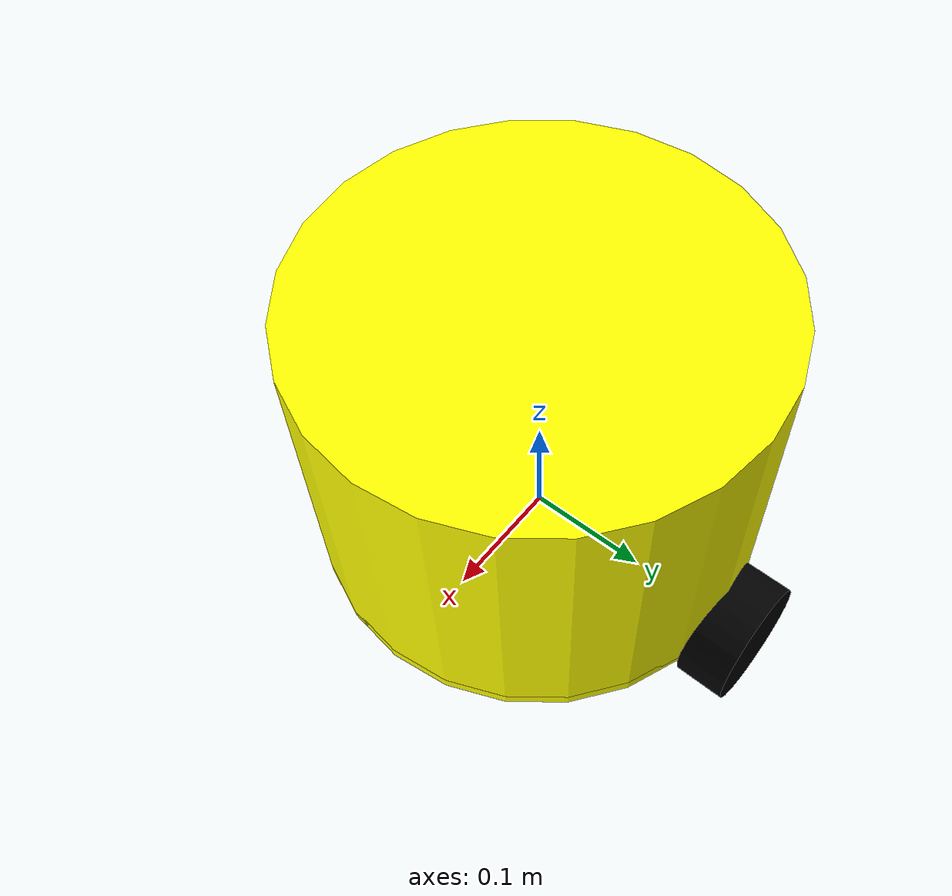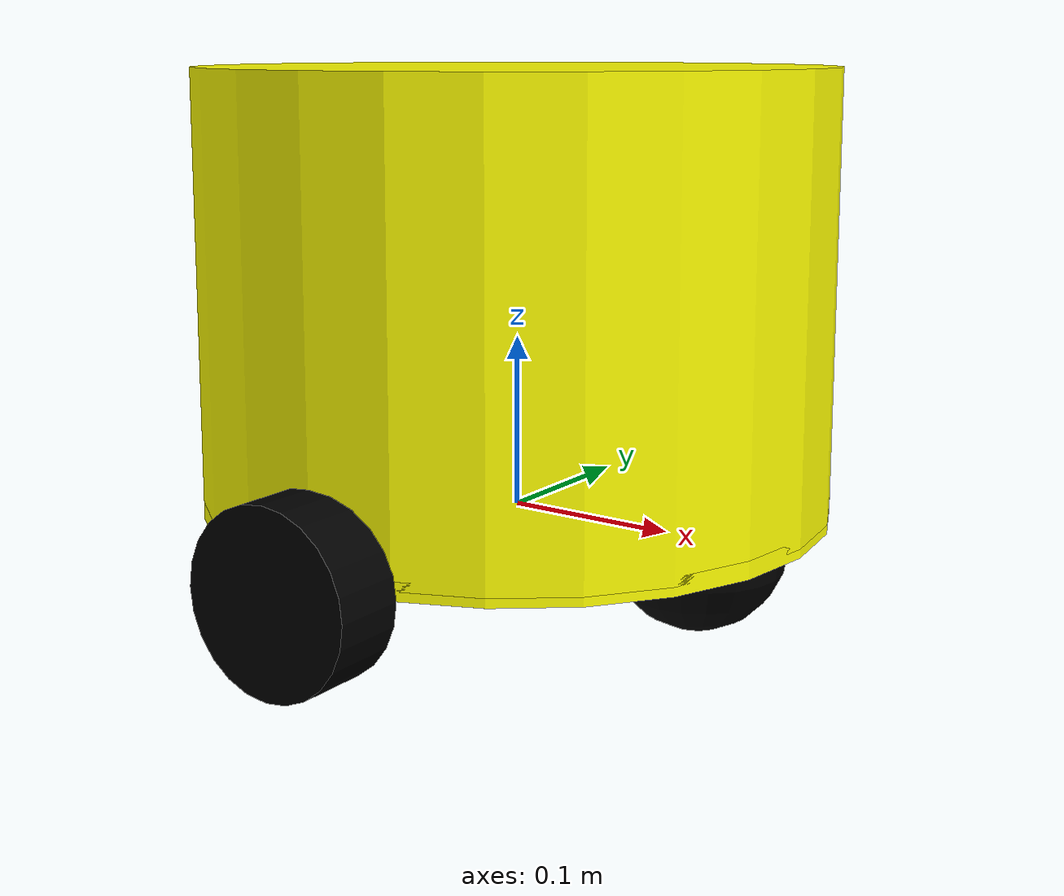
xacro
<?xml version="1.0"?>
<robot name="robot_core" xmlns:xacro="http://www.ros.org/wiki/xacro">

  <!-- Define color -->
  <material name="yellow">
    <color rgba="1 1 0 1"/>
  </material>
  <material name="black">
    <color rgba="0 0 0 1"/>
  </material>

  <!-- Define the base link -->
  <link name="base_link">
    <visual>
      <geometry>
        <cylinder radius="0.1815" length="0.01"/> <!-- Base plate dimensions -->
      </geometry>
      <material name="yellow"/>
      <origin xyz="0 0 0.005" rpy="0 0 0"/>
    </visual>
    <collision>
      <geometry>
        <cylinder radius="0.1815" length="0.01"/> <!-- Base plate dimensions -->
      </geometry>
      <origin xyz="0 0 0.005" rpy="0 0 0"/>
    </collision>
    <inertial>
      <mass value="1"/> <!-- Adjust mass as needed -->
      <origin xyz="0 0 0.005"/>
      <inertia ixx="0.01" ixy="0.0" ixz="0.0"
               iyy="0.01" iyz="0.0"
               izz="0.01"/> <!-- Approximate inertia values -->
    </inertial>
  </link>

  <!-- Define the chassis link -->
  <link name="chassis_link">
    <visual>
      <geometry>
        <cylinder radius="0.1815" length="0.25"/> <!-- 363mm diameter, 250mm height -->
      </geometry>
      <material name="yellow"/>
      <origin xyz="0 0 0.125" rpy="0 0 0"/> <!-- Centered on the base -->
    </visual>
    <collision>
      <geometry>
        <cylinder radius="0.1815" length="0.25"/>
      </geometry>
      <origin xyz="0 0 0.125" rpy="0 0 0"/>
    </collision>
    <inertial>
      <mass value="5"/> <!-- Adjust mass as needed -->
      <origin xyz="0 0 0.125"/>
      <inertia ixx="0.1" ixy="0.0" ixz="0.0"
               iyy="0.1" iyz="0.0"
               izz="0.1"/> <!-- Approximate inertia values -->
    </inertial>
  </link>

  <!-- Joint between base_link and chassis_link -->
  <joint name="base_to_chassis" type="fixed">
    <parent link="base_link"/>
    <child link="chassis_link"/>
    <origin xyz="0 0 0.005" rpy="0 0 0"/> <!-- Adjust based on actual height -->
  </joint>

  <!-- Left wheel -->
  <joint name="left_wheel_joint" type="continuous">
    <parent link="base_link"/>
    <child link="left_wheel"/>
    <origin xyz="0 0.195 0" rpy="-1.5708 0 0"/> <!-- Adjusted to numerical value -->
    <axis xyz="0 0 1"/>
  </joint>

  <link name="left_wheel">
    <visual>
      <geometry>
        <cylinder radius="0.05" length="0.04"/>
      </geometry>
      <material name="black"/>
    </visual>
    <collision>
      <geometry>
        <cylinder radius="0.05" length="0.04"/>
      </geometry>
    </collision>
    <inertial>
      <mass value="0.1"/> <!-- Adjust mass as needed -->
      <origin xyz="0 0 0"/>
      <inertia ixx="0.0001" ixy="0.0" ixz="0.0"
               iyy="0.0001" iyz="0.0"
               izz="0.0001"/> <!-- Approximate inertia values -->
    </inertial>
  </link>

  <!-- Right wheel -->
  <joint name="right_wheel_joint" type="continuous">
    <parent link="base_link"/>
    <child link="right_wheel"/>
    <origin xyz="0 -0.195 0" rpy="1.5708 0 0"/> <!-- Adjusted to numerical value -->
    <axis xyz="0 0 -1"/>
  </joint>

  <link name="right_wheel">
    <visual>
      <geometry>
        <cylinder radius="0.05" length="0.04"/>
      </geometry>
      <material name="black"/>
    </visual>
    <collision>
      <geometry>
        <cylinder radius="0.05" length="0.04"/>
      </geometry>
    </collision>
    <inertial>
      <mass value="0.1"/> <!-- Adjust mass as needed -->
      <origin xyz="0 0 0"/>
      <inertia ixx="0.0001" ixy="0.0" ixz="0.0"
               iyy="0.0001" iyz="0.0"
               izz="0.0001"/> <!-- Approximate inertia values -->
    </inertial>
  </link>

  <!-- Caster wheel front -->
  <joint name="caster_wheel_joint_front" type="fixed">
    <parent link="base_link"/>
    <child link="caster_wheel_front"/>
    <origin xyz="0.12 0 0"/> <!-- Adjusted based on position -->
  </joint>

  <link name="caster_wheel_front">
    <visual>
      <geometry>
        <sphere radius="0.05"/>
      </geometry>
      <material name="black"/>
    </visual>
    <collision>
      <geometry>
        <sphere radius="0.05"/>
      </geometry>
    </collision>
    <inertial>
      <mass value="0.1"/> <!-- Adjust mass as needed -->
      <origin xyz="0 0 0"/>
      <inertia ixx="0.0001" ixy="0.0" ixz="0.0"
               iyy="0.0001" iyz="0.0"
               izz="0.0001"/> <!-- Approximate inertia values -->
    </inertial>
  </link>

  <!-- Caster wheel back -->
  <joint name="caster_wheel_joint_back" type="fixed">
    <parent link="base_link"/>
    <child link="caster_wheel_back"/>
    <origin xyz="-0.12 0 0"/> <!-- Adjusted based on position -->
  </joint>

  <link name="caster_wheel_back">
    <visual>
      <geometry>
        <sphere radius="0.05"/>
      </geometry>
      <material name="black"/>
    </visual>
    <collision>
      <geometry>
        <sphere radius="0.05"/>
      </geometry>
    </collision>
    <inertial>
      <mass value="0.1"/> <!-- Adjust mass as needed -->
      <origin xyz="0 0 0"/>
      <inertia ixx="0.0001" ixy="0.0" ixz="0.0"
               iyy="0.0001" iyz="0.0"
               izz="0.0001"/> <!-- Approximate inertia values -->
    </inertial>
  </link>

</robot>
